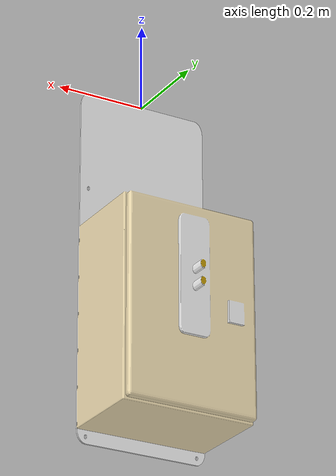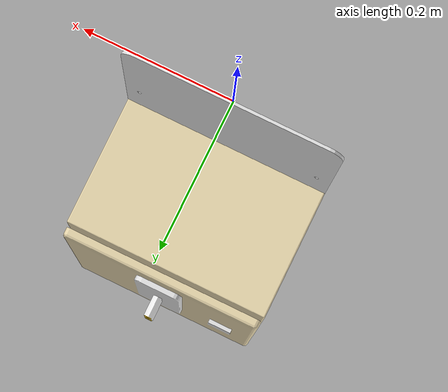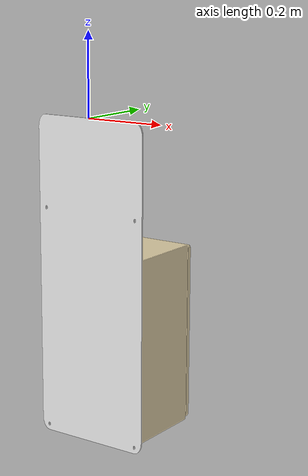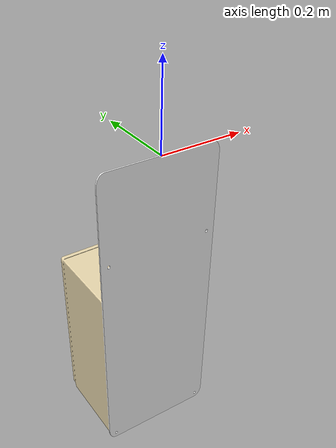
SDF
<?xml version='1.0'?>
<sdf version='1.6'>
  <model name='dockin_station'>
    <link name='link_1'>
        <visual name='visual'>
        <pose frame=''>0 0 0 0 -0 0</pose>
        <geometry>
          <mesh>
            <uri>model://docking_station/meshes/d1_back1.dae</uri>
            <scale>0.001 0.001 0.0015</scale>
          </mesh>
        </geometry>
        <cast_shadows>1</cast_shadows>
        <transparency>0</transparency>
      </visual>
      <collision name='collision'>
        <laser_retro>0</laser_retro>
        <max_contacts>10</max_contacts>
        <pose frame=''>0 0 0 0 -0 0</pose>
        <geometry>
          <mesh>
            <uri>model://docking_station/meshes/d1_back1.dae</uri>
            <scale>0.001 0.001 0.0015</scale>
          </mesh>
        </geometry>
       </collision>
    </link>
  </model>
</sdf>
